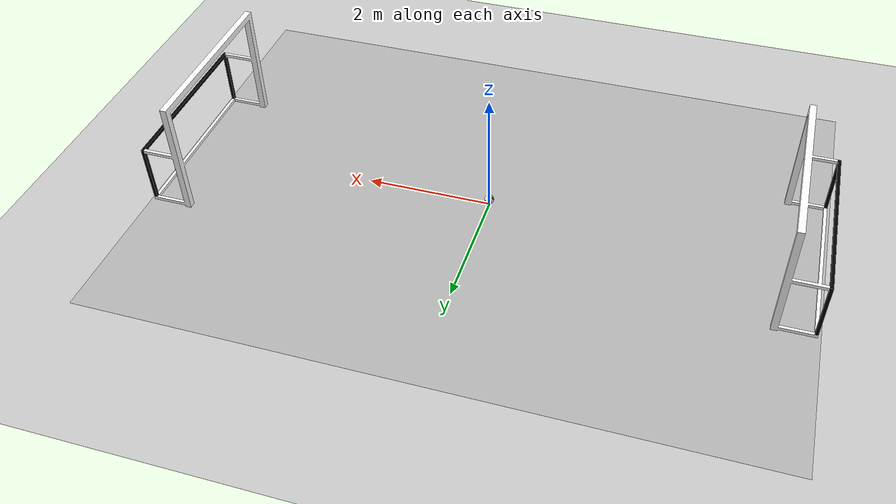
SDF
<?xml version="1.0"?>
<sdf version="1.4">
  <world name="default">
    <include>
      <uri>model://ground_plane</uri>
    </include>
    <include>
      <uri>model://sun</uri>
    </include>

    <light name="spotlight" type="spot">
      <pose>0 0 10  0 0 0</pose>
      <spot>
        <inner_angle>0.6</inner_angle>
        <outer_angle>2.0</outer_angle>
        <falloff>1.0</falloff>
      </spot>
    </light>

    <model name="field">
      <pose>0 0 0.01  0 0 0</pose>
      <static>true</static>
      <link name="body">
        <visual name="visual">
          <geometry>
            <mesh><uri>model://boldbot_sim/meshes/rchl_field_kid_2019.dae</uri></mesh>
          </geometry>
        </visual>
        <collision name="collision">
          <geometry>
            <mesh><uri>model://boldbot_sim/meshes/rchl_field_kid_2019.dae</uri></mesh>
          </geometry>
        </collision>
      </link>
    </model>

    <model name="goal1">
      <pose>4.5 0 0.01  0 0 0</pose>
      <static>true</static>
      <link name="body">
        <visual name="visual">
          <geometry>
            <mesh><uri>model://boldbot_sim/meshes/rchl_goal_2019.dae</uri></mesh>
          </geometry>
        </visual>
        <collision name="collision">
          <geometry>
            <mesh><uri>model://boldbot_sim/meshes/rchl_goal_2019.dae</uri></mesh>
          </geometry>
        </collision>
      </link>
    </model>

    <model name="goal2">
      <pose>-4.5 0 0.01  0 0 3.14159265359</pose>
      <static>true</static>
      <link name="body">
        <visual name="visual">
          <geometry>
            <mesh><uri>model://boldbot_sim/meshes/rchl_goal_2019.dae</uri></mesh>
          </geometry>
        </visual>
        <collision name="collision">
          <geometry>
            <mesh><uri>model://boldbot_sim/meshes/rchl_goal_2019.dae</uri></mesh>
          </geometry>
        </collision>
      </link>
    </model>

    <model name="ball">
      <pose>0 0 0.1  0 0 0</pose>
      <static>false</static>
      <link name="body">
        <velocity_decay><angular>0.001</angular></velocity_decay>
        <visual name="visual">
          <geometry>
            <mesh>
              <uri>model://boldbot_sim/meshes/ball.dae</uri>
            </mesh>
          </geometry>
        </visual>
        <collision name="collision">
          <pose>0 0 0  0 0 0</pose>
          <geometry>
            <sphere>
              <radius>0.07</radius>
            </sphere>
          </geometry>
          <surface>
            <bounce>
              <restitution_coefficient>0.5</restitution_coefficient>
              <threshold>0</threshold>
            </bounce>
            <contact>
              <ode>
                <max_vel>10</max_vel>
              </ode>
            </contact>
          </surface>
        </collision>
        <inertial>
          <pose>0 0 0  0 0 0</pose>
          <mass>0.170</mass>
          <inertia>
            <ixx>0.000555333</ixx>
            <ixy>0</ixy>
            <ixz>0</ixz>
            <iyy>0.000555333</iyy>
            <iyz>0</iyz>
            <izz>0.000555333</izz>
          </inertia>
        </inertial>
      </link>
    </model>
  </world>
</sdf>
